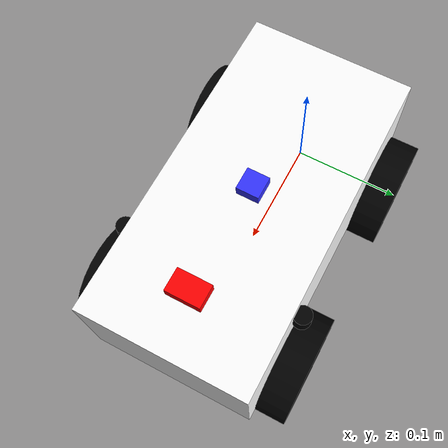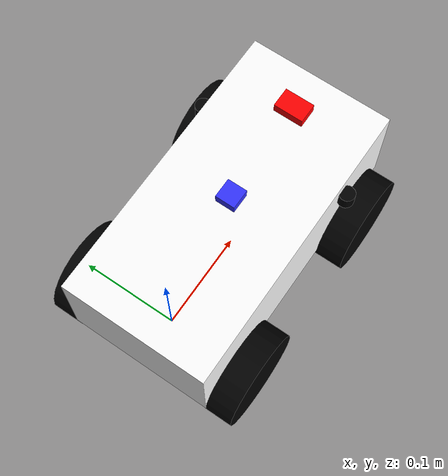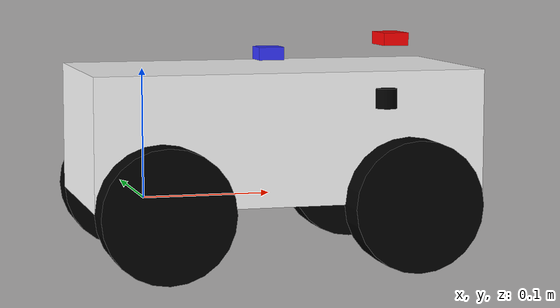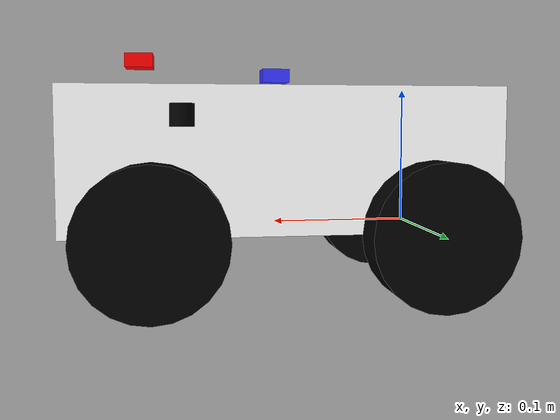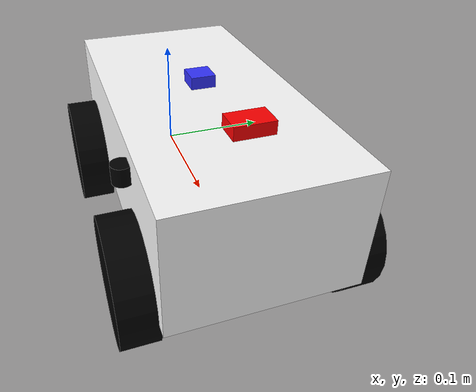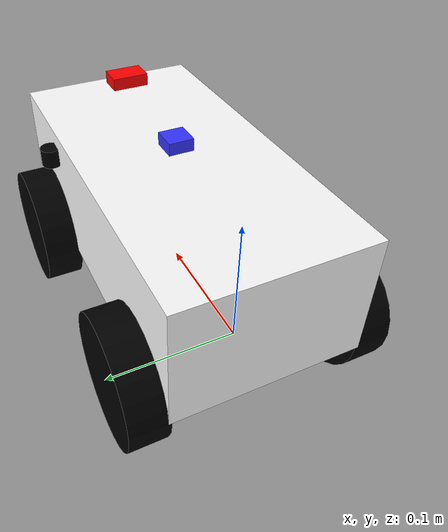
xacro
<?xml version="1.0"?>
<robot xmlns:xacro="http://www.ros.org/wiki/xacro">

    <xacro:include filename='inertial_macros.xacro'/>

    <material name="white">
        <color rgba="1 1 1 1"/>
    </material>

    <material name="orange">
        <color rgba="1 0.3 0.1 1"/>
    </material>

    <material name="blue">
        <color rgba="0.2 0.2 1 1"/>
    </material>

    <material name="black">
        <color rgba="0 0 0 1"/>
    </material>

    <material name="red">
        <color rgba="1 0 0 1"/>
    </material>

    <!-- BASE LINK-->
    <link name="base_link">
    </link>

    <!-- CHASSIS LINK-->
    <joint name="chassis_joint" type="fixed">
        <parent link="base_link"/>
        <child link="chassis"/>
        <origin xyz="0.05 0 0"/>
    </joint>

    <link name="chassis">
        <visual>
            <origin xyz="0.05 0 0.05"></origin>
            <geometry>
                <box size="0.3 0.15 0.10" />
            </geometry>
            <material name="white"/>
        </visual>
        <collision>
            <origin xyz="0.05 0 0.05"></origin>
            <geometry>
                <box size="0.3 0.15 0.10" />
            </geometry>
        </collision>
        <xacro:inertial_box mass="0.85" x="0.3" y="0.15" z="0.10">
            <origin xyz="0.05 0 0.075"/>
        </xacro:inertial_box>
    </link>

    <!-- BACK LEFT WHEEL LINK-->
    <joint name="back_left_wheel_joint" type="continuous">
        <parent link="base_link"/>
        <child link="back_left_wheel"/>
        <origin xyz="0 0.0875 0" rpy="-${pi/2} 0 0"/>
        <axis xyz="0 0 1"/>
    </joint>

    <link name="back_left_wheel">
        <visual>
            <geometry>
                <cylinder radius="0.05" length="0.03"/>
            </geometry>
            <material name="black"/>
        </visual>
        <collision>
            <geometry>
                <cylinder radius="0.05" length="0.03"/>
            </geometry>
        </collision>
        <xacro:inertial_cylinder mass="0.03" length="0.03" radius="0.05">
            <origin xyz="0 0 0" rpy="0 0 0"/>
        </xacro:inertial_cylinder>
    </link>

    <!-- BACK RIGHT WHEEL LINK-->
    <joint name="back_right_wheel_joint" type="continuous">
        <parent link="base_link"/>
        <child link="back_right_wheel"/>
        <origin xyz="0 -0.0875 0" rpy="${pi/2} 0 0"/>
        <axis xyz="0 0 -1"/>
    </joint>

    <link name="back_right_wheel">
        <visual>
            <geometry>
                <cylinder radius="0.05" length="0.03"/>
            </geometry>
            <material name="black"/>
        </visual>
        <collision>
            <geometry>
                <cylinder radius="0.05" length="0.03"/>
            </geometry>
        </collision>
        <xacro:inertial_cylinder mass="0.03" length="0.03" radius="0.05">
            <origin xyz="0 0 0" rpy="0 0 0"/>
        </xacro:inertial_cylinder>
    </link>

    <!-- FRONT LEFT WHEEL LINK -->
    <joint name="front_left_wheel_joint" type="revolute">
        <parent link="chassis"/>
        <child link="front_left_wheel"/>
        <origin xyz="0.14 0.0875 0" rpy="-${pi/2} 0 0"/>
        <axis xyz="0 1 0"/>
        <limit effort="5" velocity="1" lower="-${pi/4}" upper="${pi/4}"/>
        <mimic joint="steering_joint" multiplier="1.0"/>
    </joint>

    <link name="front_left_wheel">
        <visual>
            <geometry>
                <cylinder radius="0.05" length="0.03"/>
            </geometry>
            <material name="black"/>
        </visual>
        <collision>
            <geometry>
                <cylinder radius="0.05" length="0.03"/>
            </geometry>
        </collision>
        <xacro:inertial_cylinder mass="0.03" length="0.03" radius="0.05">
            <origin xyz="0 0 0" rpy="0 0 0"/>
        </xacro:inertial_cylinder>
    </link>

    <!-- FRONT RIGHT WHEEL LINK -->
    <joint name="front_right_wheel_joint" type="revolute">
        <parent link="chassis"/>
        <child link="front_right_wheel"/>
        <origin xyz="0.14 -0.0875 0" rpy="${pi/2} 0 0"/>
        <axis xyz="0 -1 0"/>
        <limit effort="5" velocity="1" lower="-${pi/4}" upper="${pi/4}"/>
        <mimic joint="steering_joint" multiplier="1.0"/>
    </joint>

    <link name="front_right_wheel">
        <visual>
            <geometry>
                <cylinder radius="0.05" length="0.03"/>
            </geometry>
            <material name="black"/>
        </visual>
        <collision>
            <geometry>
                <cylinder radius="0.05" length="0.03"/>
            </geometry>
        </collision>
        <xacro:inertial_cylinder mass="0.03" length="0.03" radius="0.05">
            <origin xyz="0 0 0" rpy="0 0 0"/>
        </xacro:inertial_cylinder>
    </link>

    <!-- STEERING SERVO (Virtual Joint for Single Servo) -->
    <joint name="steering_joint" type="revolute">
        <parent link="chassis"/>
        <child link="steering_link"/>
        <origin xyz="0.14 0 0" rpy="0 0 0"/>
        <axis xyz="0 0 1"/>
        <limit effort="10" velocity="2" lower="-${pi/4}" upper="${pi/4}"/>
    </joint>

    <link name="steering_link">
        <visual>
            <geometry>
                <box size="0.02 0.02 0.01"/>
            </geometry>
            <material name="orange"/>
        </visual>
        <xacro:inertial_box mass="0.01" x="0.02" y="0.02" z="0.01">
            <origin xyz="0 0 0"/>
        </xacro:inertial_box>
    </link>

    <!-- IMU SENSOR MOUNT -->
    <joint name="imu_joint" type="fixed">
        <parent link="chassis"/>
        <child link="imu_link"/>
        <origin xyz="0.05 0 0.11" rpy="0 0 0"/>
    </joint>

    <link name="imu_link">
        <visual>
            <geometry>
                <box size="0.02 0.02 0.01"/>
            </geometry>
            <material name="blue"/>
        </visual>
        <collision>
            <geometry>
                <box size="0.02 0.02 0.01"/>
            </geometry>
        </collision>
        <xacro:inertial_box mass="0.01" x="0.02" y="0.02" z="0.01">
            <origin xyz="0 0 0"/>
        </xacro:inertial_box>
    </link>

    <!-- CAMERA MOUNT -->
    <joint name="camera_joint" type="fixed">
        <parent link="chassis"/>
        <child link="camera_link"/>
        <origin xyz="0.15 0 0.12" rpy="0 0 0"/>
    </joint>

    <link name="camera_link">
        <visual>
            <geometry>
                <box size="0.02 0.03 0.01"/>
            </geometry>
            <material name="red"/>
        </visual>
        <collision>
            <geometry>
                <box size="0.02 0.03 0.01"/>
            </geometry>
        </collision>
        <xacro:inertial_box mass="0.005" x="0.02" y="0.03" z="0.01">
            <origin xyz="0 0 0"/>
        </xacro:inertial_box>
    </link>

    <!-- TF LUNA LIDAR SENSORS -->
    <!-- Front TF Luna -->
    <joint name="tf_luna_front_joint" type="fixed">
        <parent link="chassis"/>
        <child link="tf_luna_front_link"/>
        <origin xyz="0.16 0 0.08" rpy="0 0 0"/>
    </joint>

    <link name="tf_luna_front_link">
        <visual>
            <geometry>
                <cylinder radius="0.008" length="0.015"/>
            </geometry>
            <material name="black"/>
        </visual>
        <collision>
            <geometry>
                <cylinder radius="0.008" length="0.015"/>
            </geometry>
        </collision>
        <xacro:inertial_cylinder mass="0.002" length="0.015" radius="0.008">
            <origin xyz="0 0 0"/>
        </xacro:inertial_cylinder>
    </link>

    <!-- Left TF Luna -->
    <joint name="tf_luna_left_joint" type="fixed">
        <parent link="chassis"/>
        <child link="tf_luna_left_link"/>
        <origin xyz="0.12 0.08 0.08" rpy="0 0 ${pi/2}"/>
    </joint>

    <link name="tf_luna_left_link">
        <visual>
            <geometry>
                <cylinder radius="0.008" length="0.015"/>
            </geometry>
            <material name="black"/>
        </visual>
        <collision>
            <geometry>
                <cylinder radius="0.008" length="0.015"/>
            </geometry>
        </collision>
        <xacro:inertial_cylinder mass="0.002" length="0.015" radius="0.008">
            <origin xyz="0 0 0"/>
        </xacro:inertial_cylinder>
    </link>

    <!-- Right TF Luna -->
    <joint name="tf_luna_right_joint" type="fixed">
        <parent link="chassis"/>
        <child link="tf_luna_right_link"/>
        <origin xyz="0.12 -0.08 0.08" rpy="0 0 -${pi/2}"/>
    </joint>

    <link name="tf_luna_right_link">
        <visual>
            <geometry>
                <cylinder radius="0.008" length="0.015"/>
            </geometry>
            <material name="black"/>
        </visual>
        <collision>
            <geometry>
                <cylinder radius="0.008" length="0.015"/>
            </geometry>
        </collision>
        <xacro:inertial_cylinder mass="0.002" length="0.015" radius="0.008">
            <origin xyz="0 0 0"/>
        </xacro:inertial_cylinder>
    </link>

</robot>

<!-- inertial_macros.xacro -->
<robot xmlns:xacro="http://www.ros.org/wiki/xacro" >

    <!-- Specify some standard inertial calculations https://en.wikipedia.org/wiki/List_of_moments_of_inertia -->
    <!-- These make use of xacro's mathematical functionality -->

    <xacro:macro name="inertial_box" params="mass x y z *origin">
        <inertial>
            <xacro:insert_block name="origin"/>
            <mass value="${mass}" />
            <inertia ixx="${(1/12) * mass * (y*y+z*z)}" ixy="0.0" ixz="0.0"
                    iyy="${(1/12) * mass * (x*x+z*z)}" iyz="0.0"
                    izz="${(1/12) * mass * (x*x+y*y)}" />
        </inertial>
    </xacro:macro>

    <xacro:macro name="inertial_cylinder" params="mass length radius *origin">
        <inertial>
            <xacro:insert_block name="origin"/>
            <mass value="${mass}" />
            <inertia ixx="${(1/12) * mass * (3*radius*radius + length*length)}" ixy="0.0" ixz="0.0"
                    iyy="${(1/12) * mass * (3*radius*radius + length*length)}" iyz="0.0"
                    izz="${(1/2) * mass * (radius*radius)}" />
        </inertial>
    </xacro:macro>

</robot>
